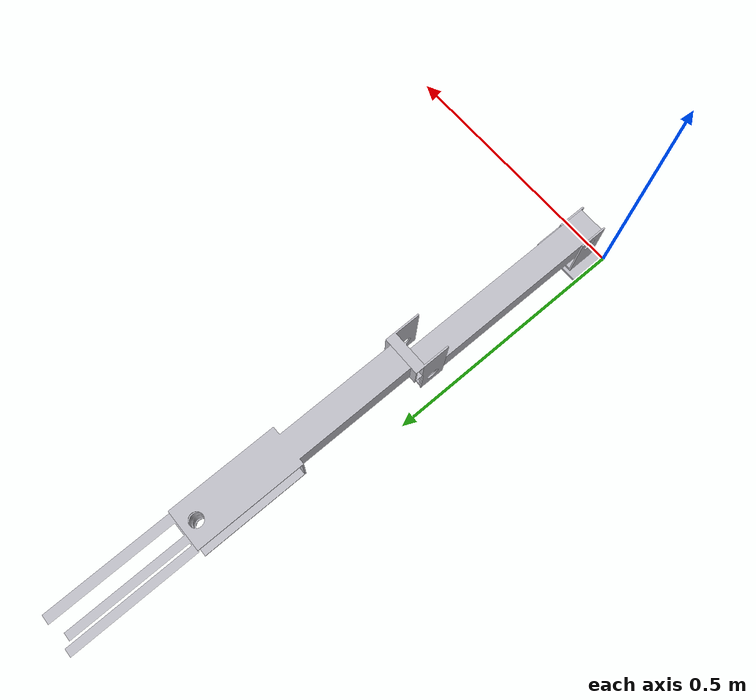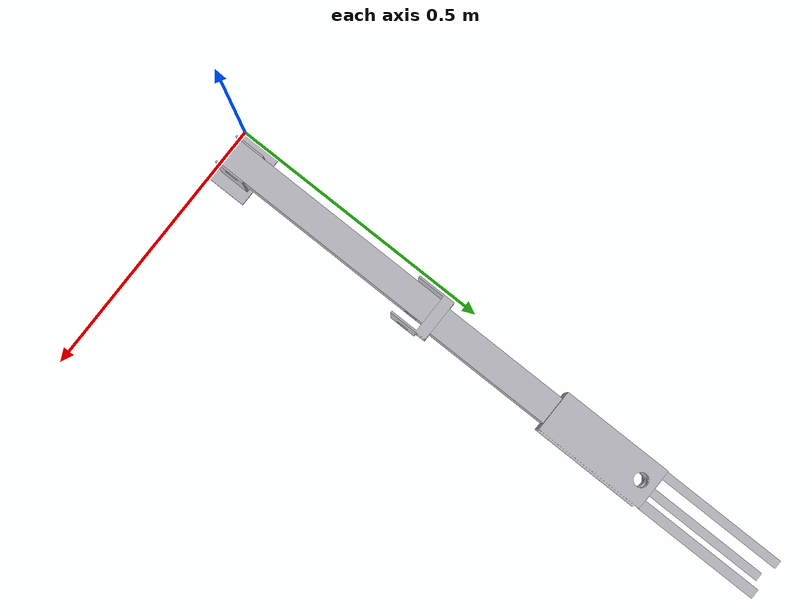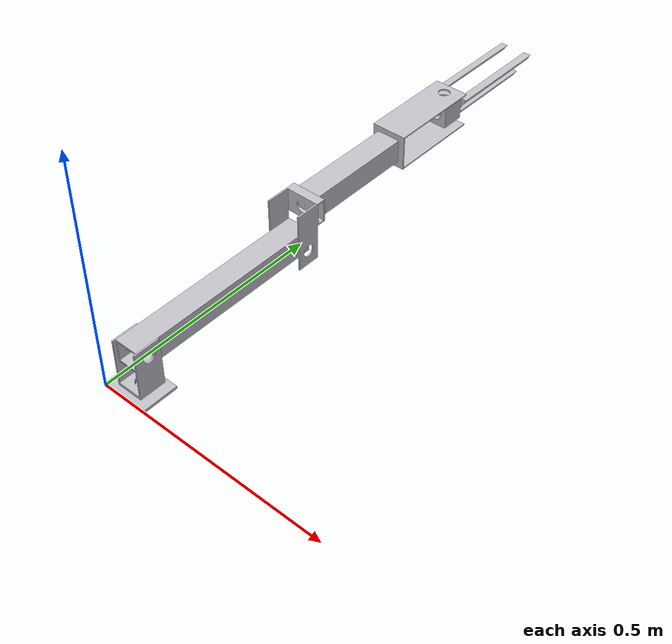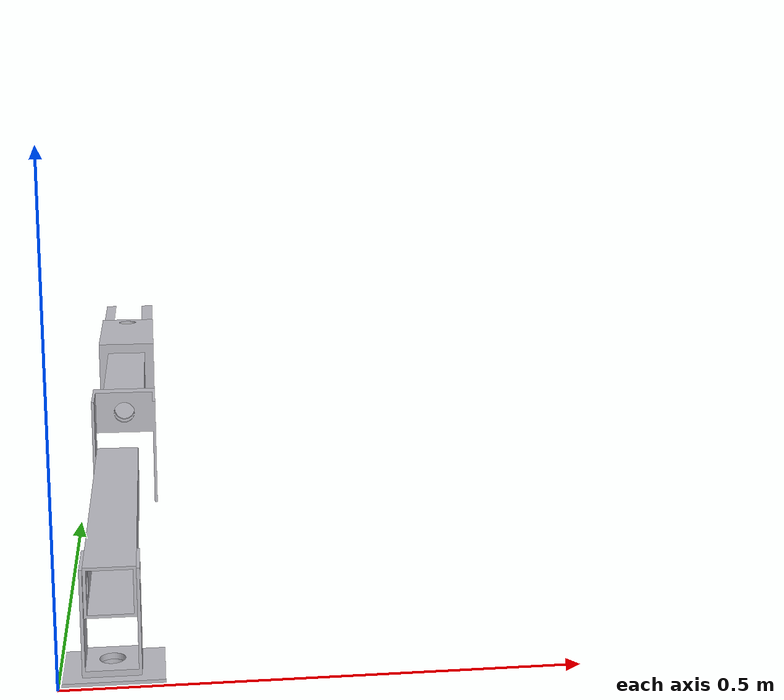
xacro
<?xml version="1.0" ?>
<robot name="BRUH" xmlns:xacro="http://www.ros.org/wiki/xacro">

<link name="base_link">
  <inertial>
    <origin xyz="0.049999999999908465 0.03732491617294113 0.003125" rpy="0 0 0"/>
    <mass value="0.3438852516301944"/>
    <inertia ixx="0.000173" iyy="0.000307" izz="0.000477" ixy="0.0" iyz="0.0" ixz="0.0"/>
  </inertial>
  <visual>
    <origin xyz="0 0 0" rpy="0 0 0"/>
    <geometry>
      <mesh filename="package://rover/rover/simulation/meshes/BRUH/base_link.stl" scale="0.001 0.001 0.001"/>
    </geometry>
    <material name="silver"/>
  </visual>
  <collision>
    <origin xyz="0 0 0" rpy="0 0 0"/>
    <geometry>
      <mesh filename="package://rover/rover/simulation/meshes/BRUH/base_link.stl" scale="0.001 0.001 0.001"/>
    </geometry>
  </collision>
</link>

<link name="LINK1_1">
  <inertial>
    <origin xyz="0.02500000000000001 -3.469446951953614e-17 0.18750000000000036" rpy="0 0 0"/>
    <mass value="1.9066669876353899"/>
    <inertia ixx="0.028446" iyy="0.028422" izz="0.00141" ixy="0.0" iyz="0.0" ixz="0.0"/>
  </inertial>
  <visual>
    <origin xyz="-0.025 -0.043125 -0.0875" rpy="0 0 0"/>
    <geometry>
      <mesh filename="package://rover/rover/simulation/meshes/BRUH/LINK1_1.stl" scale="0.001 0.001 0.001"/>
    </geometry>
    <material name="silver"/>
  </visual>
  <collision>
    <origin xyz="-0.025 -0.043125 -0.0875" rpy="0 0 0"/>
    <geometry>
      <mesh filename="package://rover/rover/simulation/meshes/BRUH/LINK1_1.stl" scale="0.001 0.001 0.001"/>
    </geometry>
  </collision>
</link>

<link name="Component3_1">
  <inertial>
    <origin xyz="0.03430362109974345 -0.04944582134444816 0.014912670037228792" rpy="0 0 0"/>
    <mass value="0.4940349563853918"/>
    <inertia ixx="0.000813" iyy="0.000699" izz="0.001065" ixy="2e-06" iyz="0.000148" ixz="-1e-06"/>
  </inertial>
  <visual>
    <origin xyz="-0.025 -0.043125 -0.4625" rpy="0 0 0"/>
    <geometry>
      <mesh filename="package://rover/rover/simulation/meshes/BRUH/Component3_1.stl" scale="0.001 0.001 0.001"/>
    </geometry>
    <material name="silver"/>
  </visual>
  <collision>
    <origin xyz="-0.025 -0.043125 -0.4625" rpy="0 0 0"/>
    <geometry>
      <mesh filename="package://rover/rover/simulation/meshes/BRUH/Component3_1.stl" scale="0.001 0.001 0.001"/>
    </geometry>
  </collision>
</link>

<link name="Component4_1">
  <inertial>
    <origin xyz="-7.868329075064878e-05 4.85722573273506e-17 0.19765089570473438" rpy="0 0 0"/>
    <mass value="1.9294963540078034"/>
    <inertia ixx="0.028758" iyy="0.028194" izz="0.002163" ixy="0.0" iyz="-0.0" ixz="-1.2e-05"/>
  </inertial>
  <visual>
    <origin xyz="-0.059375 0.026425 -0.5075" rpy="0 0 0"/>
    <geometry>
      <mesh filename="package://rover/rover/simulation/meshes/BRUH/Component4_1.stl" scale="0.001 0.001 0.001"/>
    </geometry>
    <material name="silver"/>
  </visual>
  <collision>
    <origin xyz="-0.059375 0.026425 -0.5075" rpy="0 0 0"/>
    <geometry>
      <mesh filename="package://rover/rover/simulation/meshes/BRUH/Component4_1.stl" scale="0.001 0.001 0.001"/>
    </geometry>
  </collision>
</link>

<link name="Component5_1">
  <inertial>
    <origin xyz="-0.00732499999999995 0.029675000000000396 5.551115123125783e-16" rpy="0 0 0"/>
    <mass value="0.6776848594164601"/>
    <inertia ixx="0.00032" iyy="0.000352" izz="0.000352" ixy="-0.0" iyz="0.0" ixz="0.0"/>
  </inertial>
  <visual>
    <origin xyz="-0.0667 0.0561 -0.910625" rpy="0 0 0"/>
    <geometry>
      <mesh filename="package://rover/rover/simulation/meshes/BRUH/Component5_1.stl" scale="0.001 0.001 0.001"/>
    </geometry>
    <material name="silver"/>
  </visual>
  <collision>
    <origin xyz="-0.0667 0.0561 -0.910625" rpy="0 0 0"/>
    <geometry>
      <mesh filename="package://rover/rover/simulation/meshes/BRUH/Component5_1.stl" scale="0.001 0.001 0.001"/>
    </geometry>
  </collision>
</link>

<link name="Component6_1">
  <inertial>
    <origin xyz="0.002342295771168623 -0.0013510302871900769 0.10686648641093843" rpy="0 0 0"/>
    <mass value="0.6213154428464627"/>
    <inertia ixx="0.003333" iyy="0.003355" izz="0.000702" ixy="1.9e-05" iyz="7e-06" ixz="-1.3e-05"/>
  </inertial>
  <visual>
    <origin xyz="-0.059375 0.026425 -0.935625" rpy="0 0 0"/>
    <geometry>
      <mesh filename="package://rover/rover/simulation/meshes/BRUH/Component6_1.stl" scale="0.001 0.001 0.001"/>
    </geometry>
    <material name="silver"/>
  </visual>
  <collision>
    <origin xyz="-0.059375 0.026425 -0.935625" rpy="0 0 0"/>
    <geometry>
      <mesh filename="package://rover/rover/simulation/meshes/BRUH/Component6_1.stl" scale="0.001 0.001 0.001"/>
    </geometry>
  </collision>
</link>

<link name="turntable_1">
  <inertial>
    <origin xyz="-8.21703816100694e-14 -0.00019647994583754658 0.036488404975619185" rpy="0 0 0"/>
    <mass value="0.3830463821666405"/>
    <inertia ixx="0.000547" iyy="0.000653" izz="0.000329" ixy="0.0" iyz="3e-06" ixz="-0.0"/>
  </inertial>
  <visual>
    <origin xyz="-0.05 -0.04 -0.00625" rpy="0 0 0"/>
    <geometry>
      <mesh filename="package://rover/rover/simulation/meshes/BRUH/turntable_1.stl" scale="0.001 0.001 0.001"/>
    </geometry>
    <material name="silver"/>
  </visual>
  <collision>
    <origin xyz="-0.05 -0.04 -0.00625" rpy="0 0 0"/>
    <geometry>
      <mesh filename="package://rover/rover/simulation/meshes/BRUH/turntable_1.stl" scale="0.001 0.001 0.001"/>
    </geometry>
  </collision>
</link>

<joint name="Revolute 2" type="continuous">
  <origin xyz="-0.025 0.003125 0.08125" rpy="-1.57 0 0"/>
  <parent link="turntable_1"/>
  <child link="LINK1_1"/>
  <axis xyz="-1.0 0.0 -0.0"/>
</joint>

<joint name="Revolute 3" type="continuous">
  <origin xyz="0.0 0.0 0.375" rpy="0 0 0"/>
  <parent link="LINK1_1"/>
  <child link="Component3_1"/>
  <axis xyz="1.0 -0.0 0.0"/>
</joint>

<joint name="Revolute 4" type="continuous">
  <origin xyz="0.034375 -0.06955 0.045" rpy="0 0 0"/>
  <parent link="Component3_1"/>
  <child link="Component4_1"/>
  <axis xyz="0.0 0.0 -1.0"/>
</joint>

<joint name="Revolute 5" type="continuous">
  <origin xyz="0.007325 -0.029675 0.403125" rpy="0 0 0"/>
  <parent link="Component4_1"/>
  <child link="Component5_1"/>
  <axis xyz="-0.0 -1.0 -0.0"/>
</joint>

<joint name="Revolute 6" type="continuous">
  <origin xyz="-0.007325 0.029675 0.025" rpy="0 0 0"/>
  <parent link="Component5_1"/>
  <child link="Component6_1"/>
  <axis xyz="-0.0 0.0 -1.0"/>
</joint>

<joint name="Revolute 7" type="continuous">
  <origin xyz="0.05 0.04 0.00625" rpy="0 0 0"/>
  <parent link="base_link"/>
  <child link="turntable_1"/>
  <axis xyz="0.0 0.0 -1.0"/>
</joint>

</robot>
